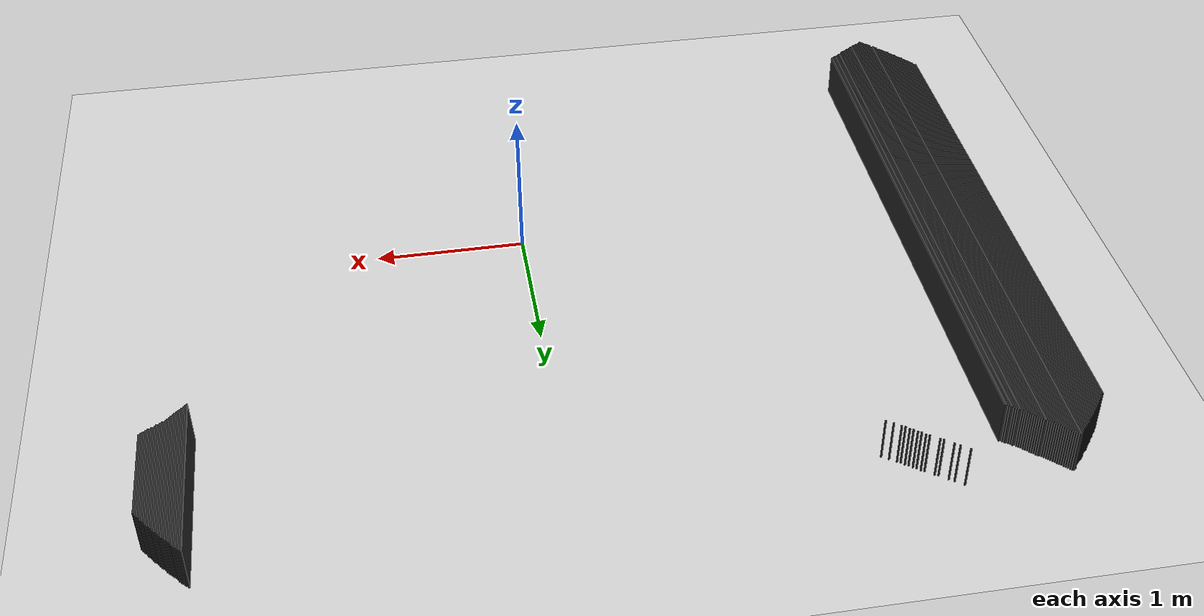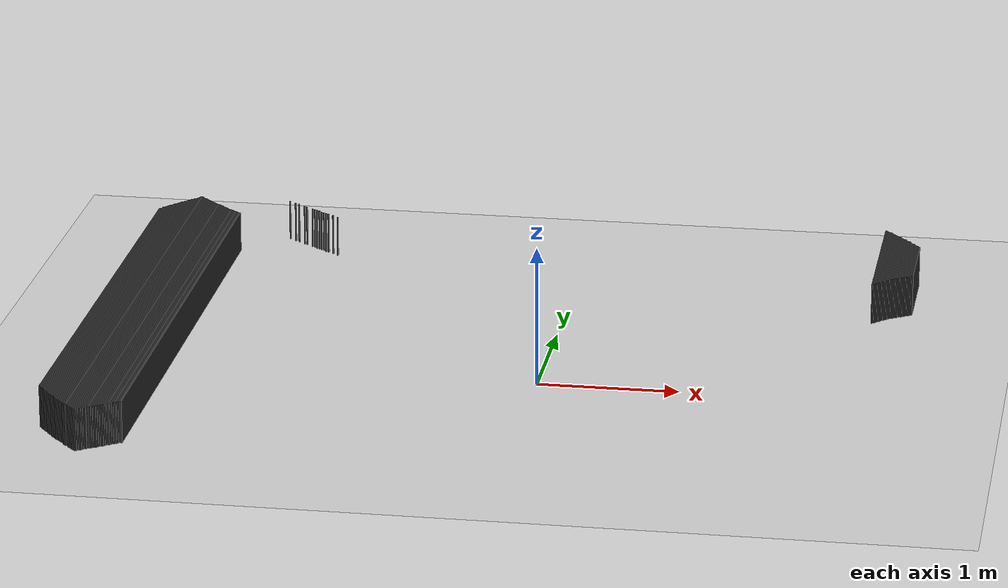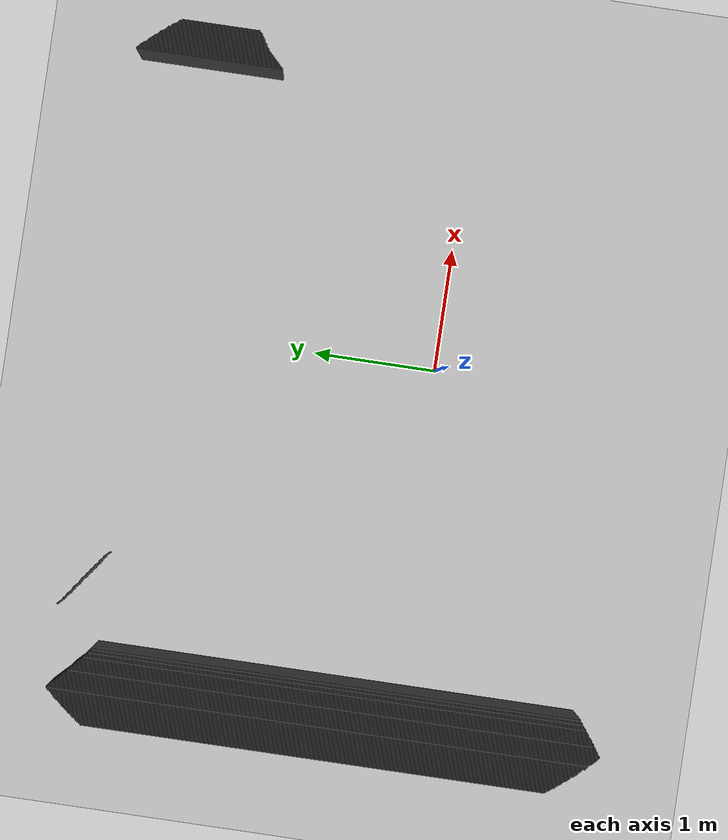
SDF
<sdf version="1.7">
 <world name="mapa_mundo">
  <model name="ground_plane">
   <static>true</static>
   <link name="link">
    <collision name="collision">
     <geometry><plane><normal>0 0 1</normal><size>10 10</size></plane></geometry>
     <surface><friction><ode><mu>100</mu><mu2>50</mu2></ode></friction></surface>
    </collision>
    <visual name="visual">
     <geometry><plane><normal>0 0 1</normal><size>10 10</size></plane></geometry>
     <material>
      <ambient>0.8 0.8 0.8 1</ambient>
      <diffuse>0.8 0.8 0.8 1</diffuse>
      <specular>0.8 0.8 0.8 1</specular>
     </material>
    </visual>
   </link>
  </model>
  <model name="wall_200">
   <static>true</static>
   <link name="link">
    <collision name="collision"><geometry><box><size>0.01 1.18 0.3</size></box></geometry></collision>
    <visual name="visual">
     <geometry><box><size>0.01 1.18 0.3</size></box></geometry>
     <material><ambient>0.2 0.2 0.2 1</ambient><diffuse>0.2 0.2 0.2 1</diffuse></material>
    </visual>
    <pose>2.195 2.17 0.15 0 0 0</pose>
   </link>
  </model>
  <model name="wall_201">
   <static>true</static>
   <link name="link">
    <collision name="collision"><geometry><box><size>0.01 1.16 0.3</size></box></geometry></collision>
    <visual name="visual">
     <geometry><box><size>0.01 1.16 0.3</size></box></geometry>
     <material><ambient>0.2 0.2 0.2 1</ambient><diffuse>0.2 0.2 0.2 1</diffuse></material>
    </visual>
    <pose>2.205 2.17 0.15 0 0 0</pose>
   </link>
  </model>
  <model name="wall_202">
   <static>true</static>
   <link name="link">
    <collision name="collision"><geometry><box><size>0.01 0.01 0.3</size></box></geometry></collision>
    <visual name="visual">
     <geometry><box><size>0.01 0.01 0.3</size></box></geometry>
     <material><ambient>0.2 0.2 0.2 1</ambient><diffuse>0.2 0.2 0.2 1</diffuse></material>
    </visual>
    <pose>-2.285 2.735 0.15 0 0 0</pose>
   </link>
  </model>
  <model name="wall_203">
   <static>true</static>
   <link name="link">
    <collision name="collision">
     <geometry><box><size>0.01 1.1400000000000001 0.3</size></box></geometry>
    </collision>
    <visual name="visual">
     <geometry><box><size>0.01 1.1400000000000001 0.3</size></box></geometry>
     <material><ambient>0.2 0.2 0.2 1</ambient><diffuse>0.2 0.2 0.2 1</diffuse></material>
    </visual>
    <pose>2.215 2.17 0.15 0 0 0</pose>
   </link>
  </model>
  <model name="wall_204">
   <static>true</static>
   <link name="link">
    <collision name="collision"><geometry><box><size>0.02 4.37 0.3</size></box></geometry></collision>
    <visual name="visual">
     <geometry><box><size>0.02 4.37 0.3</size></box></geometry>
     <material><ambient>0.2 0.2 0.2 1</ambient><diffuse>0.2 0.2 0.2 1</diffuse></material>
    </visual>
    <pose>-2.96 0.545 0.15 0 0 0</pose>
   </link>
  </model>
  <model name="wall_205">
   <static>true</static>
   <link name="link">
    <collision name="collision"><geometry><box><size>0.01 1.12 0.3</size></box></geometry></collision>
    <visual name="visual">
     <geometry><box><size>0.01 1.12 0.3</size></box></geometry>
     <material><ambient>0.2 0.2 0.2 1</ambient><diffuse>0.2 0.2 0.2 1</diffuse></material>
    </visual>
    <pose>2.225 2.17 0.15 0 0 0</pose>
   </link>
  </model>
  <model name="wall_206">
   <static>true</static>
   <link name="link">
    <collision name="collision">
     <geometry><box><size>0.01 4.3500000000000005 0.3</size></box></geometry>
    </collision>
    <visual name="visual">
     <geometry><box><size>0.01 4.3500000000000005 0.3</size></box></geometry>
     <material><ambient>0.2 0.2 0.2 1</ambient><diffuse>0.2 0.2 0.2 1</diffuse></material>
    </visual>
    <pose>-2.975 0.545 0.15 0 0 0</pose>
   </link>
  </model>
  <model name="wall_207">
   <static>true</static>
   <link name="link">
    <collision name="collision"><geometry><box><size>0.01 4.38 0.3</size></box></geometry></collision>
    <visual name="visual">
     <geometry><box><size>0.01 4.38 0.3</size></box></geometry>
     <material><ambient>0.2 0.2 0.2 1</ambient><diffuse>0.2 0.2 0.2 1</diffuse></material>
    </visual>
    <pose>-2.945 0.53 0.15 0 0 0</pose>
   </link>
  </model>
  <model name="wall_208">
   <static>true</static>
   <link name="link">
    <collision name="collision"><geometry><box><size>0.01 1.1 0.3</size></box></geometry></collision>
    <visual name="visual">
     <geometry><box><size>0.01 1.1 0.3</size></box></geometry>
     <material><ambient>0.2 0.2 0.2 1</ambient><diffuse>0.2 0.2 0.2 1</diffuse></material>
    </visual>
    <pose>2.235 2.17 0.15 0 0 0</pose>
   </link>
  </model>
  <model name="wall_209">
   <static>true</static>
   <link name="link">
    <collision name="collision"><geometry><box><size>0.01 4.38 0.3</size></box></geometry></collision>
    <visual name="visual">
     <geometry><box><size>0.01 4.38 0.3</size></box></geometry>
     <material><ambient>0.2 0.2 0.2 1</ambient><diffuse>0.2 0.2 0.2 1</diffuse></material>
    </visual>
    <pose>-2.935 0.52 0.15 0 0 0</pose>
   </link>
  </model>
  <model name="wall_210">
   <static>true</static>
   <link name="link">
    <collision name="collision"><geometry><box><size>0.01 1.08 0.3</size></box></geometry></collision>
    <visual name="visual">
     <geometry><box><size>0.01 1.08 0.3</size></box></geometry>
     <material><ambient>0.2 0.2 0.2 1</ambient><diffuse>0.2 0.2 0.2 1</diffuse></material>
    </visual>
    <pose>2.245 2.17 0.15 0 0 0</pose>
   </link>
  </model>
  <model name="wall_211">
   <static>true</static>
   <link name="link">
    <collision name="collision"><geometry><box><size>0.01 4.32 0.3</size></box></geometry></collision>
    <visual name="visual">
     <geometry><box><size>0.01 4.32 0.3</size></box></geometry>
     <material><ambient>0.2 0.2 0.2 1</ambient><diffuse>0.2 0.2 0.2 1</diffuse></material>
    </visual>
    <pose>-2.985 0.54 0.15 0 0 0</pose>
   </link>
  </model>
  <model name="wall_212">
   <static>true</static>
   <link name="link">
    <collision name="collision"><geometry><box><size>0.01 4.38 0.3</size></box></geometry></collision>
    <visual name="visual">
     <geometry><box><size>0.01 4.38 0.3</size></box></geometry>
     <material><ambient>0.2 0.2 0.2 1</ambient><diffuse>0.2 0.2 0.2 1</diffuse></material>
    </visual>
    <pose>-2.9250000000000003 0.51 0.15 0 0 0</pose>
   </link>
  </model>
  <model name="wall_213">
   <static>true</static>
   <link name="link">
    <collision name="collision"><geometry><box><size>0.01 0.01 0.3</size></box></geometry></collision>
    <visual name="visual">
     <geometry><box><size>0.01 0.01 0.3</size></box></geometry>
     <material><ambient>0.2 0.2 0.2 1</ambient><diffuse>0.2 0.2 0.2 1</diffuse></material>
    </visual>
    <pose>-2.235 2.695 0.15 0 0 0</pose>
   </link>
  </model>
  <model name="wall_214">
   <static>true</static>
   <link name="link">
    <collision name="collision"><geometry><box><size>0.01 4.29 0.3</size></box></geometry></collision>
    <visual name="visual">
     <geometry><box><size>0.01 4.29 0.3</size></box></geometry>
     <material><ambient>0.2 0.2 0.2 1</ambient><diffuse>0.2 0.2 0.2 1</diffuse></material>
    </visual>
    <pose>-2.995 0.545 0.15 0 0 0</pose>
   </link>
  </model>
  <model name="wall_215">
   <static>true</static>
   <link name="link">
    <collision name="collision"><geometry><box><size>0.01 4.38 0.3</size></box></geometry></collision>
    <visual name="visual">
     <geometry><box><size>0.01 4.38 0.3</size></box></geometry>
     <material><ambient>0.2 0.2 0.2 1</ambient><diffuse>0.2 0.2 0.2 1</diffuse></material>
    </visual>
    <pose>-2.915 0.5 0.15 0 0 0</pose>
   </link>
  </model>
  <model name="wall_216">
   <static>true</static>
   <link name="link">
    <collision name="collision"><geometry><box><size>0.01 1.05 0.3</size></box></geometry></collision>
    <visual name="visual">
     <geometry><box><size>0.01 1.05 0.3</size></box></geometry>
     <material><ambient>0.2 0.2 0.2 1</ambient><diffuse>0.2 0.2 0.2 1</diffuse></material>
    </visual>
    <pose>2.255 2.165 0.15 0 0 0</pose>
   </link>
  </model>
  <model name="wall_217">
   <static>true</static>
   <link name="link">
    <collision name="collision">
     <geometry><box><size>0.01 4.2700000000000005 0.3</size></box></geometry>
    </collision>
    <visual name="visual">
     <geometry><box><size>0.01 4.2700000000000005 0.3</size></box></geometry>
     <material><ambient>0.2 0.2 0.2 1</ambient><diffuse>0.2 0.2 0.2 1</diffuse></material>
    </visual>
    <pose>-3.005 0.545 0.15 0 0 0</pose>
   </link>
  </model>
  <model name="wall_218">
   <static>true</static>
   <link name="link">
    <collision name="collision"><geometry><box><size>0.01 4.38 0.3</size></box></geometry></collision>
    <visual name="visual">
     <geometry><box><size>0.01 4.38 0.3</size></box></geometry>
     <material><ambient>0.2 0.2 0.2 1</ambient><diffuse>0.2 0.2 0.2 1</diffuse></material>
    </visual>
    <pose>-2.9050000000000002 0.49 0.15 0 0 0</pose>
   </link>
  </model>
  <model name="wall_219">
   <static>true</static>
   <link name="link">
    <collision name="collision"><geometry><box><size>0.01 0.01 0.3</size></box></geometry></collision>
    <visual name="visual">
     <geometry><box><size>0.01 0.01 0.3</size></box></geometry>
     <material><ambient>0.2 0.2 0.2 1</ambient><diffuse>0.2 0.2 0.2 1</diffuse></material>
    </visual>
    <pose>-2.205 2.6750000000000003 0.15 0 0 0</pose>
   </link>
  </model>
  <model name="wall_220">
   <static>true</static>
   <link name="link">
    <collision name="collision"><geometry><box><size>0.01 1.03 0.3</size></box></geometry></collision>
    <visual name="visual">
     <geometry><box><size>0.01 1.03 0.3</size></box></geometry>
     <material><ambient>0.2 0.2 0.2 1</ambient><diffuse>0.2 0.2 0.2 1</diffuse></material>
    </visual>
    <pose>2.265 2.165 0.15 0 0 0</pose>
   </link>
  </model>
  <model name="wall_221">
   <static>true</static>
   <link name="link">
    <collision name="collision"><geometry><box><size>0.01 4.25 0.3</size></box></geometry></collision>
    <visual name="visual">
     <geometry><box><size>0.01 4.25 0.3</size></box></geometry>
     <material><ambient>0.2 0.2 0.2 1</ambient><diffuse>0.2 0.2 0.2 1</diffuse></material>
    </visual>
    <pose>-3.015 0.545 0.15 0 0 0</pose>
   </link>
  </model>
  <model name="wall_222">
   <static>true</static>
   <link name="link">
    <collision name="collision"><geometry><box><size>0.01 4.38 0.3</size></box></geometry></collision>
    <visual name="visual">
     <geometry><box><size>0.01 4.38 0.3</size></box></geometry>
     <material><ambient>0.2 0.2 0.2 1</ambient><diffuse>0.2 0.2 0.2 1</diffuse></material>
    </visual>
    <pose>-2.895 0.48 0.15 0 0 0</pose>
   </link>
  </model>
  <model name="wall_223">
   <static>true</static>
   <link name="link">
    <collision name="collision"><geometry><box><size>0.01 1.01 0.3</size></box></geometry></collision>
    <visual name="visual">
     <geometry><box><size>0.01 1.01 0.3</size></box></geometry>
     <material><ambient>0.2 0.2 0.2 1</ambient><diffuse>0.2 0.2 0.2 1</diffuse></material>
    </visual>
    <pose>2.275 2.165 0.15 0 0 0</pose>
   </link>
  </model>
  <model name="wall_224">
   <static>true</static>
   <link name="link">
    <collision name="collision"><geometry><box><size>0.01 4.23 0.3</size></box></geometry></collision>
    <visual name="visual">
     <geometry><box><size>0.01 4.23 0.3</size></box></geometry>
     <material><ambient>0.2 0.2 0.2 1</ambient><diffuse>0.2 0.2 0.2 1</diffuse></material>
    </visual>
    <pose>-3.025 0.545 0.15 0 0 0</pose>
   </link>
  </model>
  <model name="wall_225">
   <static>true</static>
   <link name="link">
    <collision name="collision"><geometry><box><size>0.01 4.38 0.3</size></box></geometry></collision>
    <visual name="visual">
     <geometry><box><size>0.01 4.38 0.3</size></box></geometry>
     <material><ambient>0.2 0.2 0.2 1</ambient><diffuse>0.2 0.2 0.2 1</diffuse></material>
    </visual>
    <pose>-2.8850000000000002 0.47000000000000003 0.15 0 0 0</pose>
   </link>
  </model>
  <model name="wall_226">
   <static>true</static>
   <link name="link">
    <collision name="collision"><geometry><box><size>0.01 0.99 0.3</size></box></geometry></collision>
    <visual name="visual">
     <geometry><box><size>0.01 0.99 0.3</size></box></geometry>
     <material><ambient>0.2 0.2 0.2 1</ambient><diffuse>0.2 0.2 0.2 1</diffuse></material>
    </visual>
    <pose>2.285 2.165 0.15 0 0 0</pose>
   </link>
  </model>
  <model name="wall_227">
   <static>true</static>
   <link name="link">
    <collision name="collision"><geometry><box><size>0.01 4.21 0.3</size></box></geometry></collision>
    <visual name="visual">
     <geometry><box><size>0.01 4.21 0.3</size></box></geometry>
     <material><ambient>0.2 0.2 0.2 1</ambient><diffuse>0.2 0.2 0.2 1</diffuse></material>
    </visual>
    <pose>-3.035 0.545 0.15 0 0 0</pose>
   </link>
  </model>
  <model name="wall_228">
   <static>true</static>
   <link name="link">
    <collision name="collision"><geometry><box><size>0.01 4.37 0.3</size></box></geometry></collision>
    <visual name="visual">
     <geometry><box><size>0.01 4.37 0.3</size></box></geometry>
     <material><ambient>0.2 0.2 0.2 1</ambient><diffuse>0.2 0.2 0.2 1</diffuse></material>
    </visual>
    <pose>-2.875 0.465 0.15 0 0 0</pose>
   </link>
  </model>
  <model name="wall_229">
   <static>true</static>
   <link name="link">
    <collision name="collision"><geometry><box><size>0.01 0.97 0.3</size></box></geometry></collision>
    <visual name="visual">
     <geometry><box><size>0.01 0.97 0.3</size></box></geometry>
     <material><ambient>0.2 0.2 0.2 1</ambient><diffuse>0.2 0.2 0.2 1</diffuse></material>
    </visual>
    <pose>2.295 2.165 0.15 0 0 0</pose>
   </link>
  </model>
  <model name="wall_230">
   <static>true</static>
   <link name="link">
    <collision name="collision"><geometry><box><size>0.01 4.19 0.3</size></box></geometry></collision>
    <visual name="visual">
     <geometry><box><size>0.01 4.19 0.3</size></box></geometry>
     <material><ambient>0.2 0.2 0.2 1</ambient><diffuse>0.2 0.2 0.2 1</diffuse></material>
    </visual>
    <pose>-3.045 0.545 0.15 0 0 0</pose>
   </link>
  </model>
  <model name="wall_231">
   <static>true</static>
   <link name="link">
    <collision name="collision">
     <geometry><box><size>0.01 4.3500000000000005 0.3</size></box></geometry>
    </collision>
    <visual name="visual">
     <geometry><box><size>0.01 4.3500000000000005 0.3</size></box></geometry>
     <material><ambient>0.2 0.2 0.2 1</ambient><diffuse>0.2 0.2 0.2 1</diffuse></material>
    </visual>
    <pose>-2.865 0.465 0.15 0 0 0</pose>
   </link>
  </model>
  <model name="wall_232">
   <static>true</static>
   <link name="link">
    <collision name="collision"><geometry><box><size>0.01 0.01 0.3</size></box></geometry></collision>
    <visual name="visual">
     <geometry><box><size>0.01 0.01 0.3</size></box></geometry>
     <material><ambient>0.2 0.2 0.2 1</ambient><diffuse>0.2 0.2 0.2 1</diffuse></material>
    </visual>
    <pose>-2.1550000000000002 2.6350000000000002 0.15 0 0 0</pose>
   </link>
  </model>
  <model name="wall_233">
   <static>true</static>
   <link name="link">
    <collision name="collision">
     <geometry><box><size>0.01 0.9500000000000001 0.3</size></box></geometry>
    </collision>
    <visual name="visual">
     <geometry><box><size>0.01 0.9500000000000001 0.3</size></box></geometry>
     <material><ambient>0.2 0.2 0.2 1</ambient><diffuse>0.2 0.2 0.2 1</diffuse></material>
    </visual>
    <pose>2.305 2.165 0.15 0 0 0</pose>
   </link>
  </model>
  <model name="wall_234">
   <static>true</static>
   <link name="link">
    <collision name="collision"><geometry><box><size>0.01 4.33 0.3</size></box></geometry></collision>
    <visual name="visual">
     <geometry><box><size>0.01 4.33 0.3</size></box></geometry>
     <material><ambient>0.2 0.2 0.2 1</ambient><diffuse>0.2 0.2 0.2 1</diffuse></material>
    </visual>
    <pose>-2.855 0.465 0.15 0 0 0</pose>
   </link>
  </model>
  <model name="wall_235">
   <static>true</static>
   <link name="link">
    <collision name="collision"><geometry><box><size>0.01 0.01 0.3</size></box></geometry></collision>
    <visual name="visual">
     <geometry><box><size>0.01 0.01 0.3</size></box></geometry>
     <material><ambient>0.2 0.2 0.2 1</ambient><diffuse>0.2 0.2 0.2 1</diffuse></material>
    </visual>
    <pose>-2.1350000000000002 2.625 0.15 0 0 0</pose>
   </link>
  </model>
  <model name="wall_236">
   <static>true</static>
   <link name="link">
    <collision name="collision"><geometry><box><size>0.01 0.93 0.3</size></box></geometry></collision>
    <visual name="visual">
     <geometry><box><size>0.01 0.93 0.3</size></box></geometry>
     <material><ambient>0.2 0.2 0.2 1</ambient><diffuse>0.2 0.2 0.2 1</diffuse></material>
    </visual>
    <pose>2.315 2.165 0.15 0 0 0</pose>
   </link>
  </model>
  <model name="wall_237">
   <static>true</static>
   <link name="link">
    <collision name="collision"><geometry><box><size>0.01 4.16 0.3</size></box></geometry></collision>
    <visual name="visual">
     <geometry><box><size>0.01 4.16 0.3</size></box></geometry>
     <material><ambient>0.2 0.2 0.2 1</ambient><diffuse>0.2 0.2 0.2 1</diffuse></material>
    </visual>
    <pose>-3.055 0.54 0.15 0 0 0</pose>
   </link>
  </model>
  <model name="wall_238">
   <static>true</static>
   <link name="link">
    <collision name="collision"><geometry><box><size>0.01 4.32 0.3</size></box></geometry></collision>
    <visual name="visual">
     <geometry><box><size>0.01 4.32 0.3</size></box></geometry>
     <material><ambient>0.2 0.2 0.2 1</ambient><diffuse>0.2 0.2 0.2 1</diffuse></material>
    </visual>
    <pose>-2.845 0.46 0.15 0 0 0</pose>
   </link>
  </model>
  <model name="wall_239">
   <static>true</static>
   <link name="link">
    <collision name="collision"><geometry><box><size>0.01 4.13 0.3</size></box></geometry></collision>
    <visual name="visual">
     <geometry><box><size>0.01 4.13 0.3</size></box></geometry>
     <material><ambient>0.2 0.2 0.2 1</ambient><diffuse>0.2 0.2 0.2 1</diffuse></material>
    </visual>
    <pose>-3.065 0.545 0.15 0 0 0</pose>
   </link>
  </model>
  <model name="wall_240">
   <static>true</static>
   <link name="link">
    <collision name="collision"><geometry><box><size>0.01 4.3 0.3</size></box></geometry></collision>
    <visual name="visual">
     <geometry><box><size>0.01 4.3 0.3</size></box></geometry>
     <material><ambient>0.2 0.2 0.2 1</ambient><diffuse>0.2 0.2 0.2 1</diffuse></material>
    </visual>
    <pose>-2.835 0.46 0.15 0 0 0</pose>
   </link>
  </model>
  <model name="wall_241">
   <static>true</static>
   <link name="link">
    <collision name="collision"><geometry><box><size>0.01 0.9 0.3</size></box></geometry></collision>
    <visual name="visual">
     <geometry><box><size>0.01 0.9 0.3</size></box></geometry>
     <material><ambient>0.2 0.2 0.2 1</ambient><diffuse>0.2 0.2 0.2 1</diffuse></material>
    </visual>
    <pose>2.325 2.16 0.15 0 0 0</pose>
   </link>
  </model>
  <model name="wall_242">
   <static>true</static>
   <link name="link">
    <collision name="collision"><geometry><box><size>0.01 4.11 0.3</size></box></geometry></collision>
    <visual name="visual">
     <geometry><box><size>0.01 4.11 0.3</size></box></geometry>
     <material><ambient>0.2 0.2 0.2 1</ambient><diffuse>0.2 0.2 0.2 1</diffuse></material>
    </visual>
    <pose>-3.075 0.545 0.15 0 0 0</pose>
   </link>
  </model>
  <model name="wall_243">
   <static>true</static>
   <link name="link">
    <collision name="collision"><geometry><box><size>0.01 4.28 0.3</size></box></geometry></collision>
    <visual name="visual">
     <geometry><box><size>0.01 4.28 0.3</size></box></geometry>
     <material><ambient>0.2 0.2 0.2 1</ambient><diffuse>0.2 0.2 0.2 1</diffuse></material>
    </visual>
    <pose>-2.825 0.46 0.15 0 0 0</pose>
   </link>
  </model>
  <model name="wall_244">
   <static>true</static>
   <link name="link">
    <collision name="collision"><geometry><box><size>0.01 0.89 0.3</size></box></geometry></collision>
    <visual name="visual">
     <geometry><box><size>0.01 0.89 0.3</size></box></geometry>
     <material><ambient>0.2 0.2 0.2 1</ambient><diffuse>0.2 0.2 0.2 1</diffuse></material>
    </visual>
    <pose>2.335 2.1550000000000002 0.15 0 0 0</pose>
   </link>
  </model>
  <model name="wall_245">
   <static>true</static>
   <link name="link">
    <collision name="collision"><geometry><box><size>0.01 4.09 0.3</size></box></geometry></collision>
    <visual name="visual">
     <geometry><box><size>0.01 4.09 0.3</size></box></geometry>
     <material><ambient>0.2 0.2 0.2 1</ambient><diffuse>0.2 0.2 0.2 1</diffuse></material>
    </visual>
    <pose>-3.085 0.545 0.15 0 0 0</pose>
   </link>
  </model>
  <model name="wall_246">
   <static>true</static>
   <link name="link">
    <collision name="collision">
     <geometry><box><size>0.01 4.2700000000000005 0.3</size></box></geometry>
    </collision>
    <visual name="visual">
     <geometry><box><size>0.01 4.2700000000000005 0.3</size></box></geometry>
     <material><ambient>0.2 0.2 0.2 1</ambient><diffuse>0.2 0.2 0.2 1</diffuse></material>
    </visual>
    <pose>-2.815 0.455 0.15 0 0 0</pose>
   </link>
  </model>
  <model name="wall_247">
   <static>true</static>
   <link name="link">
    <collision name="collision"><geometry><box><size>0.01 0.01 0.3</size></box></geometry></collision>
    <visual name="visual">
     <geometry><box><size>0.01 0.01 0.3</size></box></geometry>
     <material><ambient>0.2 0.2 0.2 1</ambient><diffuse>0.2 0.2 0.2 1</diffuse></material>
    </visual>
    <pose>-2.085 2.585 0.15 0 0 0</pose>
   </link>
  </model>
  <model name="wall_248">
   <static>true</static>
   <link name="link">
    <collision name="collision"><geometry><box><size>0.01 0.87 0.3</size></box></geometry></collision>
    <visual name="visual">
     <geometry><box><size>0.01 0.87 0.3</size></box></geometry>
     <material><ambient>0.2 0.2 0.2 1</ambient><diffuse>0.2 0.2 0.2 1</diffuse></material>
    </visual>
    <pose>2.345 2.1550000000000002 0.15 0 0 0</pose>
   </link>
  </model>
  <model name="wall_249">
   <static>true</static>
   <link name="link">
    <collision name="collision"><geometry><box><size>0.01 4.07 0.3</size></box></geometry></collision>
    <visual name="visual">
     <geometry><box><size>0.01 4.07 0.3</size></box></geometry>
     <material><ambient>0.2 0.2 0.2 1</ambient><diffuse>0.2 0.2 0.2 1</diffuse></material>
    </visual>
    <pose>-3.095 0.545 0.15 0 0 0</pose>
   </link>
  </model>
  <model name="wall_250">
   <static>true</static>
   <link name="link">
    <collision name="collision"><geometry><box><size>0.02 4.24 0.3</size></box></geometry></collision>
    <visual name="visual">
     <geometry><box><size>0.02 4.24 0.3</size></box></geometry>
     <material><ambient>0.2 0.2 0.2 1</ambient><diffuse>0.2 0.2 0.2 1</diffuse></material>
    </visual>
    <pose>-2.8000000000000003 0.46 0.15 0 0 0</pose>
   </link>
  </model>
  <model name="wall_251">
   <static>true</static>
   <link name="link">
    <collision name="collision"><geometry><box><size>0.01 0.01 0.3</size></box></geometry></collision>
    <visual name="visual">
     <geometry><box><size>0.01 0.01 0.3</size></box></geometry>
     <material><ambient>0.2 0.2 0.2 1</ambient><diffuse>0.2 0.2 0.2 1</diffuse></material>
    </visual>
    <pose>-2.065 2.575 0.15 0 0 0</pose>
   </link>
  </model>
  <model name="wall_252">
   <static>true</static>
   <link name="link">
    <collision name="collision"><geometry><box><size>0.01 0.85 0.3</size></box></geometry></collision>
    <visual name="visual">
     <geometry><box><size>0.01 0.85 0.3</size></box></geometry>
     <material><ambient>0.2 0.2 0.2 1</ambient><diffuse>0.2 0.2 0.2 1</diffuse></material>
    </visual>
    <pose>2.355 2.1550000000000002 0.15 0 0 0</pose>
   </link>
  </model>
  <model name="wall_253">
   <static>true</static>
   <link name="link">
    <collision name="collision"><geometry><box><size>0.01 4.23 0.3</size></box></geometry></collision>
    <visual name="visual">
     <geometry><box><size>0.01 4.23 0.3</size></box></geometry>
     <material><ambient>0.2 0.2 0.2 1</ambient><diffuse>0.2 0.2 0.2 1</diffuse></material>
    </visual>
    <pose>-2.785 0.455 0.15 0 0 0</pose>
   </link>
  </model>
  <model name="wall_254">
   <static>true</static>
   <link name="link">
    <collision name="collision"><geometry><box><size>0.01 4.03 0.3</size></box></geometry></collision>
    <visual name="visual">
     <geometry><box><size>0.01 4.03 0.3</size></box></geometry>
     <material><ambient>0.2 0.2 0.2 1</ambient><diffuse>0.2 0.2 0.2 1</diffuse></material>
    </visual>
    <pose>-3.105 0.545 0.15 0 0 0</pose>
   </link>
  </model>
  <model name="wall_255">
   <static>true</static>
   <link name="link">
    <collision name="collision"><geometry><box><size>0.01 4.21 0.3</size></box></geometry></collision>
    <visual name="visual">
     <geometry><box><size>0.01 4.21 0.3</size></box></geometry>
     <material><ambient>0.2 0.2 0.2 1</ambient><diffuse>0.2 0.2 0.2 1</diffuse></material>
    </visual>
    <pose>-2.775 0.455 0.15 0 0 0</pose>
   </link>
  </model>
  <model name="wall_256">
   <static>true</static>
   <link name="link">
    <collision name="collision"><geometry><box><size>0.01 0.01 0.3</size></box></geometry></collision>
    <visual name="visual">
     <geometry><box><size>0.01 0.01 0.3</size></box></geometry>
     <material><ambient>0.2 0.2 0.2 1</ambient><diffuse>0.2 0.2 0.2 1</diffuse></material>
    </visual>
    <pose>-2.045 2.555 0.15 0 0 0</pose>
   </link>
  </model>
  <model name="wall_257">
   <static>true</static>
   <link name="link">
    <collision name="collision">
     <geometry><box><size>0.01 0.8300000000000001 0.3</size></box></geometry>
    </collision>
    <visual name="visual">
     <geometry><box><size>0.01 0.8300000000000001 0.3</size></box></geometry>
     <material><ambient>0.2 0.2 0.2 1</ambient><diffuse>0.2 0.2 0.2 1</diffuse></material>
    </visual>
    <pose>2.365 2.145 0.15 0 0 0</pose>
   </link>
  </model>
  <model name="wall_258">
   <static>true</static>
   <link name="link">
    <collision name="collision"><geometry><box><size>0.01 4.01 0.3</size></box></geometry></collision>
    <visual name="visual">
     <geometry><box><size>0.01 4.01 0.3</size></box></geometry>
     <material><ambient>0.2 0.2 0.2 1</ambient><diffuse>0.2 0.2 0.2 1</diffuse></material>
    </visual>
    <pose>-3.115 0.545 0.15 0 0 0</pose>
   </link>
  </model>
  <model name="wall_259">
   <static>true</static>
   <link name="link">
    <collision name="collision"><geometry><box><size>0.01 4.19 0.3</size></box></geometry></collision>
    <visual name="visual">
     <geometry><box><size>0.01 4.19 0.3</size></box></geometry>
     <material><ambient>0.2 0.2 0.2 1</ambient><diffuse>0.2 0.2 0.2 1</diffuse></material>
    </visual>
    <pose>-2.765 0.455 0.15 0 0 0</pose>
   </link>
  </model>
  <model name="wall_260">
   <static>true</static>
   <link name="link">
    <collision name="collision"><geometry><box><size>0.01 0.01 0.3</size></box></geometry></collision>
    <visual name="visual">
     <geometry><box><size>0.01 0.01 0.3</size></box></geometry>
     <material><ambient>0.2 0.2 0.2 1</ambient><diffuse>0.2 0.2 0.2 1</diffuse></material>
    </visual>
    <pose>-2.025 2.545 0.15 0 0 0</pose>
   </link>
  </model>
  <model name="wall_261">
   <static>true</static>
   <link name="link">
    <collision name="collision"><geometry><box><size>0.01 0.81 0.3</size></box></geometry></collision>
    <visual name="visual">
     <geometry><box><size>0.01 0.81 0.3</size></box></geometry>
     <material><ambient>0.2 0.2 0.2 1</ambient><diffuse>0.2 0.2 0.2 1</diffuse></material>
    </visual>
    <pose>2.375 2.145 0.15 0 0 0</pose>
   </link>
  </model>
  <model name="wall_262">
   <static>true</static>
   <link name="link">
    <collision name="collision"><geometry><box><size>0.01 3.99 0.3</size></box></geometry></collision>
    <visual name="visual">
     <geometry><box><size>0.01 3.99 0.3</size></box></geometry>
     <material><ambient>0.2 0.2 0.2 1</ambient><diffuse>0.2 0.2 0.2 1</diffuse></material>
    </visual>
    <pose>-3.125 0.545 0.15 0 0 0</pose>
   </link>
  </model>
  <model name="wall_263">
   <static>true</static>
   <link name="link">
    <collision name="collision"><geometry><box><size>0.01 4.18 0.3</size></box></geometry></collision>
    <visual name="visual">
     <geometry><box><size>0.01 4.18 0.3</size></box></geometry>
     <material><ambient>0.2 0.2 0.2 1</ambient><diffuse>0.2 0.2 0.2 1</diffuse></material>
    </visual>
    <pose>-2.755 0.45 0.15 0 0 0</pose>
   </link>
  </model>
  <model name="wall_264">
   <static>true</static>
   <link name="link">
    <collision name="collision"><geometry><box><size>0.01 0.79 0.3</size></box></geometry></collision>
    <visual name="visual">
     <geometry><box><size>0.01 0.79 0.3</size></box></geometry>
     <material><ambient>0.2 0.2 0.2 1</ambient><diffuse>0.2 0.2 0.2 1</diffuse></material>
    </visual>
    <pose>2.3850000000000002 2.145 0.15 0 0 0</pose>
   </link>
  </model>
  <model name="wall_265">
   <static>true</static>
   <link name="link">
    <collision name="collision"><geometry><box><size>0.01 3.97 0.3</size></box></geometry></collision>
    <visual name="visual">
     <geometry><box><size>0.01 3.97 0.3</size></box></geometry>
     <material><ambient>0.2 0.2 0.2 1</ambient><diffuse>0.2 0.2 0.2 1</diffuse></material>
    </visual>
    <pose>-3.1350000000000002 0.545 0.15 0 0 0</pose>
   </link>
  </model>
  <model name="wall_266">
   <static>true</static>
   <link name="link">
    <collision name="collision"><geometry><box><size>0.01 4.16 0.3</size></box></geometry></collision>
    <visual name="visual">
     <geometry><box><size>0.01 4.16 0.3</size></box></geometry>
     <material><ambient>0.2 0.2 0.2 1</ambient><diffuse>0.2 0.2 0.2 1</diffuse></material>
    </visual>
    <pose>-2.745 0.45 0.15 0 0 0</pose>
   </link>
  </model>
  <model name="wall_267">
   <static>true</static>
   <link name="link">
    <collision name="collision"><geometry><box><size>0.01 0.01 0.3</size></box></geometry></collision>
    <visual name="visual">
     <geometry><box><size>0.01 0.01 0.3</size></box></geometry>
     <material><ambient>0.2 0.2 0.2 1</ambient><diffuse>0.2 0.2 0.2 1</diffuse></material>
    </visual>
    <pose>-2.005 2.525 0.15 0 0 0</pose>
   </link>
  </model>
  <model name="wall_268">
   <static>true</static>
   <link name="link">
    <collision name="collision"><geometry><box><size>0.01 0.78 0.3</size></box></geometry></collision>
    <visual name="visual">
     <geometry><box><size>0.01 0.78 0.3</size></box></geometry>
     <material><ambient>0.2 0.2 0.2 1</ambient><diffuse>0.2 0.2 0.2 1</diffuse></material>
    </visual>
    <pose>2.395 2.14 0.15 0 0 0</pose>
   </link>
  </model>
  <model name="wall_269">
   <static>true</static>
   <link name="link">
    <collision name="collision"><geometry><box><size>0.01 4.14 0.3</size></box></geometry></collision>
    <visual name="visual">
     <geometry><box><size>0.01 4.14 0.3</size></box></geometry>
     <material><ambient>0.2 0.2 0.2 1</ambient><diffuse>0.2 0.2 0.2 1</diffuse></material>
    </visual>
    <pose>-2.735 0.45 0.15 0 0 0</pose>
   </link>
  </model>
  <model name="wall_270">
   <static>true</static>
   <link name="link">
    <collision name="collision"><geometry><box><size>0.01 0.01 0.3</size></box></geometry></collision>
    <visual name="visual">
     <geometry><box><size>0.01 0.01 0.3</size></box></geometry>
     <material><ambient>0.2 0.2 0.2 1</ambient><diffuse>0.2 0.2 0.2 1</diffuse></material>
    </visual>
    <pose>-1.985 2.515 0.15 0 0 0</pose>
   </link>
  </model>
  <model name="wall_271">
   <static>true</static>
   <link name="link">
    <collision name="collision"><geometry><box><size>0.01 3.93 0.3</size></box></geometry></collision>
    <visual name="visual">
     <geometry><box><size>0.01 3.93 0.3</size></box></geometry>
     <material><ambient>0.2 0.2 0.2 1</ambient><diffuse>0.2 0.2 0.2 1</diffuse></material>
    </visual>
    <pose>-3.145 0.545 0.15 0 0 0</pose>
   </link>
  </model>
  <model name="wall_272">
   <static>true</static>
   <link name="link">
    <collision name="collision"><geometry><box><size>0.01 4.12 0.3</size></box></geometry></collision>
    <visual name="visual">
     <geometry><box><size>0.01 4.12 0.3</size></box></geometry>
     <material><ambient>0.2 0.2 0.2 1</ambient><diffuse>0.2 0.2 0.2 1</diffuse></material>
    </visual>
    <pose>-2.725 0.45 0.15 0 0 0</pose>
   </link>
  </model>
  <model name="wall_273">
   <static>true</static>
   <link name="link">
    <collision name="collision"><geometry><box><size>0.01 0.75 0.3</size></box></geometry></collision>
    <visual name="visual">
     <geometry><box><size>0.01 0.75 0.3</size></box></geometry>
     <material><ambient>0.2 0.2 0.2 1</ambient><diffuse>0.2 0.2 0.2 1</diffuse></material>
    </visual>
    <pose>2.4050000000000002 2.1350000000000002 0.15 0 0 0</pose>
   </link>
  </model>
  <model name="wall_274">
   <static>true</static>
   <link name="link">
    <collision name="collision"><geometry><box><size>0.01 3.91 0.3</size></box></geometry></collision>
    <visual name="visual">
     <geometry><box><size>0.01 3.91 0.3</size></box></geometry>
     <material><ambient>0.2 0.2 0.2 1</ambient><diffuse>0.2 0.2 0.2 1</diffuse></material>
    </visual>
    <pose>-3.1550000000000002 0.545 0.15 0 0 0</pose>
   </link>
  </model>
  <model name="wall_275">
   <static>true</static>
   <link name="link">
    <collision name="collision"><geometry><box><size>0.01 4.11 0.3</size></box></geometry></collision>
    <visual name="visual">
     <geometry><box><size>0.01 4.11 0.3</size></box></geometry>
     <material><ambient>0.2 0.2 0.2 1</ambient><diffuse>0.2 0.2 0.2 1</diffuse></material>
    </visual>
    <pose>-2.715 0.445 0.15 0 0 0</pose>
   </link>
  </model>
  <model name="wall_276">
   <static>true</static>
   <link name="link">
    <collision name="collision"><geometry><box><size>0.01 0.01 0.3</size></box></geometry></collision>
    <visual name="visual">
     <geometry><box><size>0.01 0.01 0.3</size></box></geometry>
     <material><ambient>0.2 0.2 0.2 1</ambient><diffuse>0.2 0.2 0.2 1</diffuse></material>
    </visual>
    <pose>-1.965 2.495 0.15 0 0 0</pose>
   </link>
  </model>
  <model name="wall_277">
   <static>true</static>
   <link name="link">
    <collision name="collision"><geometry><box><size>0.01 0.74 0.3</size></box></geometry></collision>
    <visual name="visual">
     <geometry><box><size>0.01 0.74 0.3</size></box></geometry>
     <material><ambient>0.2 0.2 0.2 1</ambient><diffuse>0.2 0.2 0.2 1</diffuse></material>
    </visual>
    <pose>2.415 2.13 0.15 0 0 0</pose>
   </link>
  </model>
  <model name="wall_278">
   <static>true</static>
   <link name="link">
    <collision name="collision"><geometry><box><size>0.01 3.89 0.3</size></box></geometry></collision>
    <visual name="visual">
     <geometry><box><size>0.01 3.89 0.3</size></box></geometry>
     <material><ambient>0.2 0.2 0.2 1</ambient><diffuse>0.2 0.2 0.2 1</diffuse></material>
    </visual>
    <pose>-3.165 0.545 0.15 0 0 0</pose>
   </link>
  </model>
  <model name="wall_279">
   <static>true</static>
   <link name="link">
    <collision name="collision"><geometry><box><size>0.01 4.09 0.3</size></box></geometry></collision>
    <visual name="visual">
     <geometry><box><size>0.01 4.09 0.3</size></box></geometry>
     <material><ambient>0.2 0.2 0.2 1</ambient><diffuse>0.2 0.2 0.2 1</diffuse></material>
    </visual>
    <pose>-2.705 0.445 0.15 0 0 0</pose>
   </link>
  </model>
  <model name="wall_280">
   <static>true</static>
   <link name="link">
    <collision name="collision"><geometry><box><size>0.01 0.01 0.3</size></box></geometry></collision>
    <visual name="visual">
     <geometry><box><size>0.01 0.01 0.3</size></box></geometry>
     <material><ambient>0.2 0.2 0.2 1</ambient><diffuse>0.2 0.2 0.2 1</diffuse></material>
    </visual>
    <pose>-1.945 2.485 0.15 0 0 0</pose>
   </link>
  </model>
  <model name="wall_281">
   <static>true</static>
   <link name="link">
    <collision name="collision"><geometry><box><size>0.01 0.72 0.3</size></box></geometry></collision>
    <visual name="visual">
     <geometry><box><size>0.01 0.72 0.3</size></box></geometry>
     <material><ambient>0.2 0.2 0.2 1</ambient><diffuse>0.2 0.2 0.2 1</diffuse></material>
    </visual>
    <pose>2.4250000000000003 2.13 0.15 0 0 0</pose>
   </link>
  </model>
  <model name="wall_282">
   <static>true</static>
   <link name="link">
    <collision name="collision"><geometry><box><size>0.01 4.07 0.3</size></box></geometry></collision>
    <visual name="visual">
     <geometry><box><size>0.01 4.07 0.3</size></box></geometry>
     <material><ambient>0.2 0.2 0.2 1</ambient><diffuse>0.2 0.2 0.2 1</diffuse></material>
    </visual>
    <pose>-2.695 0.445 0.15 0 0 0</pose>
   </link>
  </model>
  <model name="wall_283">
   <static>true</static>
   <link name="link">
    <collision name="collision"><geometry><box><size>0.01 3.85 0.3</size></box></geometry></collision>
    <visual name="visual">
     <geometry><box><size>0.01 3.85 0.3</size></box></geometry>
     <material><ambient>0.2 0.2 0.2 1</ambient><diffuse>0.2 0.2 0.2 1</diffuse></material>
    </visual>
    <pose>-3.1750000000000003 0.545 0.15 0 0 0</pose>
   </link>
  </model>
  <model name="wall_284">
   <static>true</static>
   <link name="link">
    <collision name="collision"><geometry><box><size>0.02 4.05 0.3</size></box></geometry></collision>
    <visual name="visual">
     <geometry><box><size>0.02 4.05 0.3</size></box></geometry>
     <material><ambient>0.2 0.2 0.2 1</ambient><diffuse>0.2 0.2 0.2 1</diffuse></material>
    </visual>
    <pose>-2.68 0.445 0.15 0 0 0</pose>
   </link>
  </model>
  <model name="wall_285">
   <static>true</static>
   <link name="link">
    <collision name="collision">
     <geometry><box><size>0.01 0.6900000000000001 0.3</size></box></geometry>
    </collision>
    <visual name="visual">
     <geometry><box><size>0.01 0.6900000000000001 0.3</size></box></geometry>
     <material><ambient>0.2 0.2 0.2 1</ambient><diffuse>0.2 0.2 0.2 1</diffuse></material>
    </visual>
    <pose>2.435 2.125 0.15 0 0 0</pose>
   </link>
  </model>
  <model name="wall_286">
   <static>true</static>
   <link name="link">
    <collision name="collision"><geometry><box><size>0.01 3.83 0.3</size></box></geometry></collision>
    <visual name="visual">
     <geometry><box><size>0.01 3.83 0.3</size></box></geometry>
     <material><ambient>0.2 0.2 0.2 1</ambient><diffuse>0.2 0.2 0.2 1</diffuse></material>
    </visual>
    <pose>-3.185 0.545 0.15 0 0 0</pose>
   </link>
  </model>
  <model name="wall_287">
   <static>true</static>
   <link name="link">
    <collision name="collision"><geometry><box><size>0.01 4.03 0.3</size></box></geometry></collision>
    <visual name="visual">
     <geometry><box><size>0.01 4.03 0.3</size></box></geometry>
     <material><ambient>0.2 0.2 0.2 1</ambient><diffuse>0.2 0.2 0.2 1</diffuse></material>
    </visual>
    <pose>-2.665 0.445 0.15 0 0 0</pose>
   </link>
  </model>
  <model name="wall_288">
   <static>true</static>
   <link name="link">
    <collision name="collision"><geometry><box><size>0.01 0.01 0.3</size></box></geometry></collision>
    <visual name="visual">
     <geometry><box><size>0.01 0.01 0.3</size></box></geometry>
     <material><ambient>0.2 0.2 0.2 1</ambient><diffuse>0.2 0.2 0.2 1</diffuse></material>
    </visual>
    <pose>-1.905 2.455 0.15 0 0 0</pose>
   </link>
  </model>
  <model name="wall_289">
   <static>true</static>
   <link name="link">
    <collision name="collision"><geometry><box><size>0.01 0.68 0.3</size></box></geometry></collision>
    <visual name="visual">
     <geometry><box><size>0.01 0.68 0.3</size></box></geometry>
     <material><ambient>0.2 0.2 0.2 1</ambient><diffuse>0.2 0.2 0.2 1</diffuse></material>
    </visual>
    <pose>2.445 2.12 0.15 0 0 0</pose>
   </link>
  </model>
  <model name="wall_290">
   <static>true</static>
   <link name="link">
    <collision name="collision"><geometry><box><size>0.01 3.81 0.3</size></box></geometry></collision>
    <visual name="visual">
     <geometry><box><size>0.01 3.81 0.3</size></box></geometry>
     <material><ambient>0.2 0.2 0.2 1</ambient><diffuse>0.2 0.2 0.2 1</diffuse></material>
    </visual>
    <pose>-3.1950000000000003 0.545 0.15 0 0 0</pose>
   </link>
  </model>
  <model name="wall_291">
   <static>true</static>
   <link name="link">
    <collision name="collision"><geometry><box><size>0.01 4.01 0.3</size></box></geometry></collision>
    <visual name="visual">
     <geometry><box><size>0.01 4.01 0.3</size></box></geometry>
     <material><ambient>0.2 0.2 0.2 1</ambient><diffuse>0.2 0.2 0.2 1</diffuse></material>
    </visual>
    <pose>-2.6550000000000002 0.445 0.15 0 0 0</pose>
   </link>
  </model>
  <model name="wall_292">
   <static>true</static>
   <link name="link">
    <collision name="collision"><geometry><box><size>0.01 0.66 0.3</size></box></geometry></collision>
    <visual name="visual">
     <geometry><box><size>0.01 0.66 0.3</size></box></geometry>
     <material><ambient>0.2 0.2 0.2 1</ambient><diffuse>0.2 0.2 0.2 1</diffuse></material>
    </visual>
    <pose>2.455 2.12 0.15 0 0 0</pose>
   </link>
  </model>
  <model name="wall_293">
   <static>true</static>
   <link name="link">
    <collision name="collision"><geometry><box><size>0.02 3.99 0.3</size></box></geometry></collision>
    <visual name="visual">
     <geometry><box><size>0.02 3.99 0.3</size></box></geometry>
     <material><ambient>0.2 0.2 0.2 1</ambient><diffuse>0.2 0.2 0.2 1</diffuse></material>
    </visual>
    <pose>-2.64 0.445 0.15 0 0 0</pose>
   </link>
  </model>
  <model name="wall_294">
   <static>true</static>
   <link name="link">
    <collision name="collision"><geometry><box><size>0.01 3.77 0.3</size></box></geometry></collision>
    <visual name="visual">
     <geometry><box><size>0.01 3.77 0.3</size></box></geometry>
     <material><ambient>0.2 0.2 0.2 1</ambient><diffuse>0.2 0.2 0.2 1</diffuse></material>
    </visual>
    <pose>-3.205 0.545 0.15 0 0 0</pose>
   </link>
  </model>
  <model name="wall_295">
   <static>true</static>
   <link name="link">
    <collision name="collision"><geometry><box><size>0.01 3.97 0.3</size></box></geometry></collision>
    <visual name="visual">
     <geometry><box><size>0.01 3.97 0.3</size></box></geometry>
     <material><ambient>0.2 0.2 0.2 1</ambient><diffuse>0.2 0.2 0.2 1</diffuse></material>
    </visual>
    <pose>-2.625 0.445 0.15 0 0 0</pose>
   </link>
  </model>
  <model name="wall_296">
   <static>true</static>
   <link name="link">
    <collision name="collision"><geometry><box><size>0.01 0.01 0.3</size></box></geometry></collision>
    <visual name="visual">
     <geometry><box><size>0.01 0.01 0.3</size></box></geometry>
     <material><ambient>0.2 0.2 0.2 1</ambient><diffuse>0.2 0.2 0.2 1</diffuse></material>
    </visual>
    <pose>-1.865 2.4250000000000003 0.15 0 0 0</pose>
   </link>
  </model>
  <model name="wall_297">
   <static>true</static>
   <link name="link">
    <collision name="collision"><geometry><box><size>0.01 0.63 0.3</size></box></geometry></collision>
    <visual name="visual">
     <geometry><box><size>0.01 0.63 0.3</size></box></geometry>
     <material><ambient>0.2 0.2 0.2 1</ambient><diffuse>0.2 0.2 0.2 1</diffuse></material>
    </visual>
    <pose>2.465 2.115 0.15 0 0 0</pose>
   </link>
  </model>
  <model name="wall_298">
   <static>true</static>
   <link name="link">
    <collision name="collision"><geometry><box><size>0.01 3.75 0.3</size></box></geometry></collision>
    <visual name="visual">
     <geometry><box><size>0.01 3.75 0.3</size></box></geometry>
     <material><ambient>0.2 0.2 0.2 1</ambient><diffuse>0.2 0.2 0.2 1</diffuse></material>
    </visual>
    <pose>-3.215 0.545 0.15 0 0 0</pose>
   </link>
  </model>
  <model name="wall_299">
   <static>true</static>
   <link name="link">
    <collision name="collision"><geometry><box><size>0.02 3.95 0.3</size></box></geometry></collision>
    <visual name="visual">
     <geometry><box><size>0.02 3.95 0.3</size></box></geometry>
     <material><ambient>0.2 0.2 0.2 1</ambient><diffuse>0.2 0.2 0.2 1</diffuse></material>
    </visual>
    <pose>-2.61 0.445 0.15 0 0 0</pose>
   </link>
  </model>
 </world>
</sdf>
